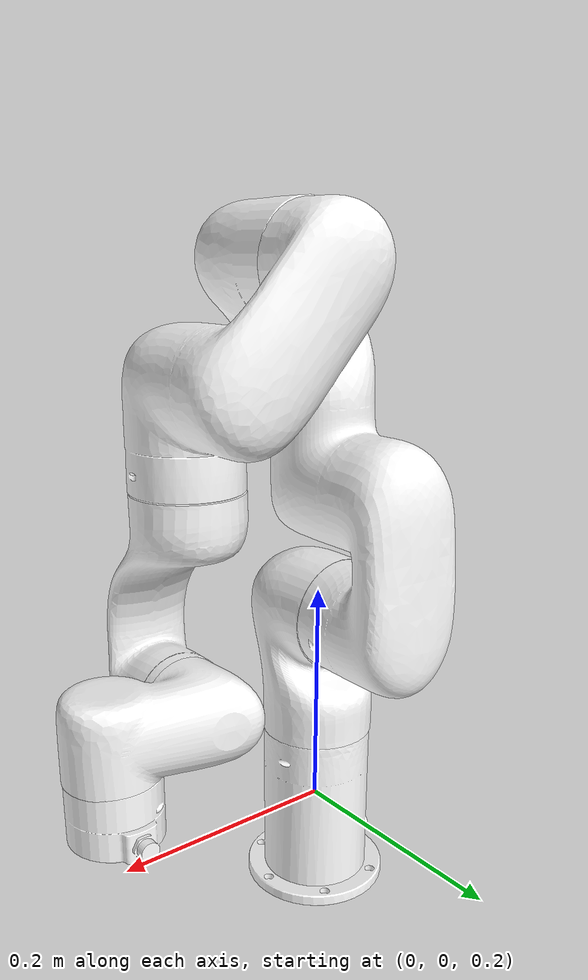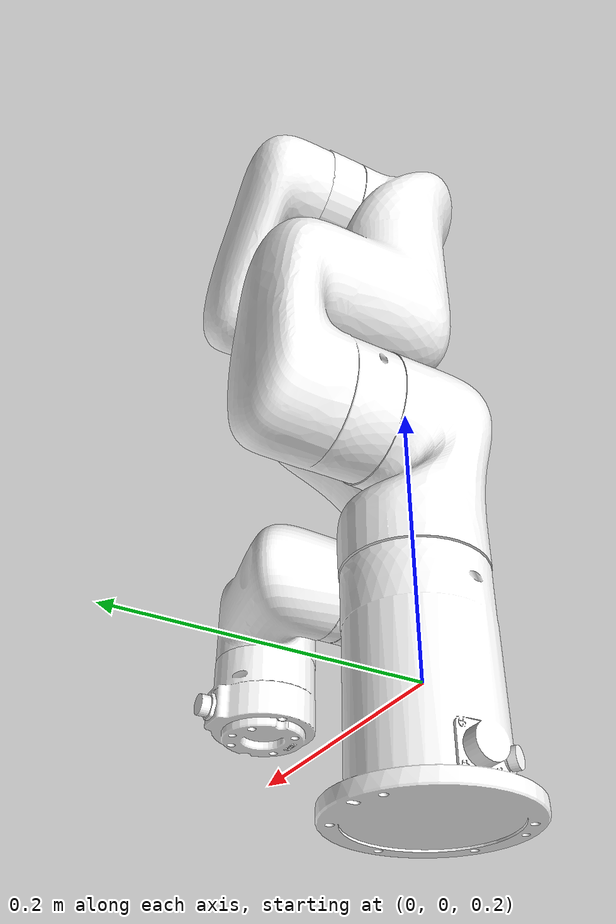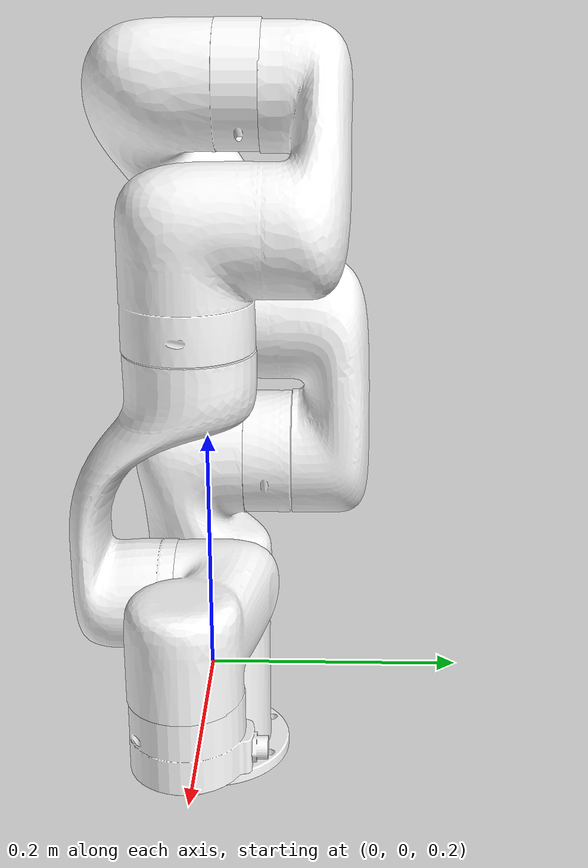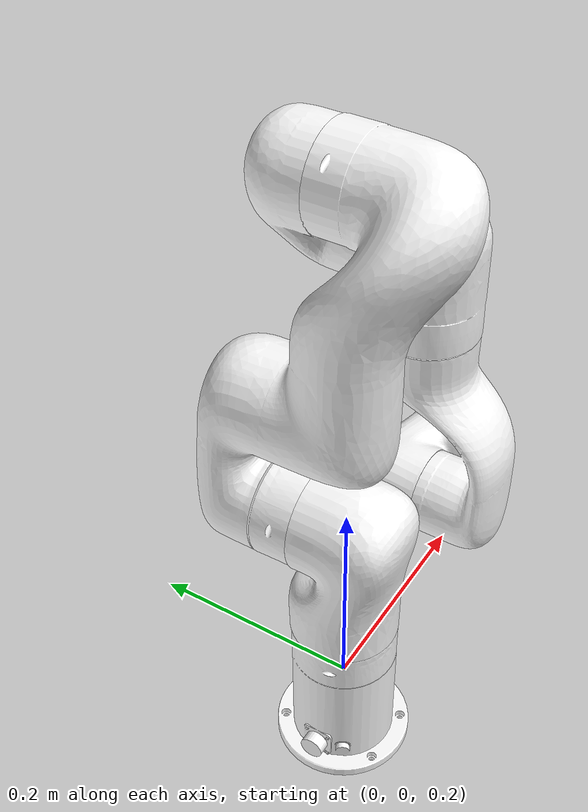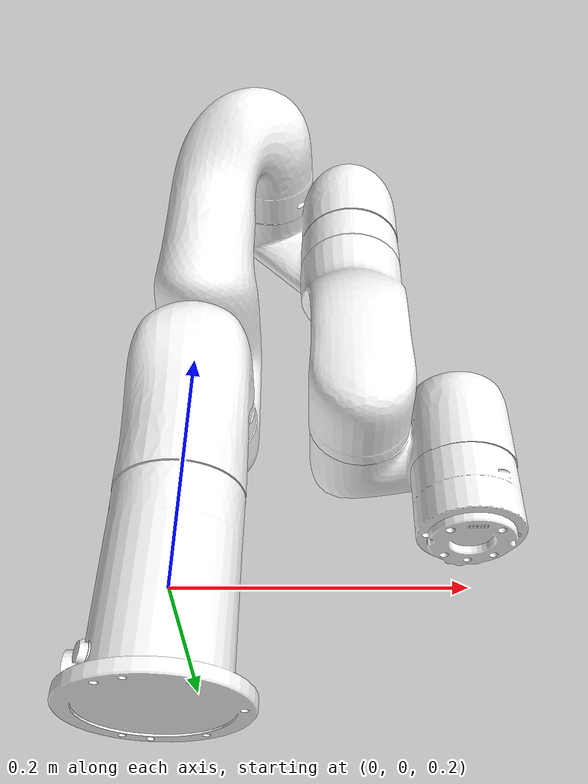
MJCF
<mujoco model="xarm5">
  <compiler angle="radian" autolimits="true" meshdir="assets"/>

  <option integrator="implicitfast"/>

  <asset>
    <material name="white" rgba="1 1 1 1"/>
    <material name="gray" rgba="0.753 0.753 0.753 1"/>
    <material name="black" rgba="0.149 0.149 0.149 1"/>

    <mesh name="link_base" file="link_base.stl" scale="0.001 0.001 0.001"/>
    <mesh name="link1" file="link1.stl" scale="0.001 0.001 0.001"/>
    <mesh name="link2" file="link2.stl" scale="0.001 0.001 0.001"/>
    <mesh name="link3" file="link3.stl" scale="0.001 0.001 0.001"/>
    <mesh name="link4" file="link4.stl" scale="0.001 0.001 0.001"/>
    <mesh name="link5" file="link5.stl" scale="0.001 0.001 0.001"/>
    <mesh name="link6" file="link6.stl" scale="0.001 0.001 0.001"/>

    <mesh name="end_tool" file="end_tool.stl"/>
    <mesh name="base_link" file="base_link.stl"/>
    <mesh name="left_outer_knuckle" file="left_outer_knuckle.stl"/>
    <mesh name="left_finger" file="left_finger.stl"/>
    <mesh name="left_inner_knuckle" file="left_inner_knuckle.stl"/>
    <mesh name="right_outer_knuckle" file="right_outer_knuckle.stl"/>
    <mesh name="right_finger" file="right_finger.stl"/>
    <mesh name="right_inner_knuckle" file="right_inner_knuckle.stl"/>
  </asset>

  <default>
    <default class="xarm5">
      <geom type="mesh" material="white"/>
      <joint axis="0 0 1" armature="0.1" range="-6.28319 6.28319" frictionloss="1"/>
      <general biastype="affine" ctrlrange="-6.28319 6.28319"/>
      <default class="size1">
        <joint damping="10"/>
        <general gainprm="1500" biasprm="0 -1500 -150" forcerange="-50 50"/>
      </default>
      <default class="size2">
        <joint damping="5"/>
        <general gainprm="1000" biasprm="0 -1000 -100" forcerange="-30 30"/>
      </default>
      <default class="size3">
        <joint damping="0.1" frictionloss="0.01" armature="0.005"/>
        <general gainprm="3000" biasprm="0 -3000 -20" forcerange="-100 100"/>
      </default>
      <default class="spring_link">
        <joint range="0 0.85" stiffness="0.05" springref="2.62" damping="0.00125"/>
      </default>
      <default class="driver">
        <joint range="0 0.85" armature="0.005" damping="0.1" solreflimit="0.005 1"/>
      </default>
      <default class="follower">
        <joint range="0 0.85" solreflimit="0.005 1"/>
      </default>
      <default class="visual">
        <geom type="mesh" contype="0" conaffinity="0" group="2"/>
      </default>
      <default class="collision">
        <geom type="mesh" group="3"/>
        <default class="pad_box1">
          <geom type="box" friction="0.7" solimp="0.95 0.99 0.001" solref="0.004 1" mass="0" priority="1" size="0.015 0.002 0.0095" rgba="0.0 0.1 0.7 1"/>
        </default>
        <default class="pad_box2">
          <geom type="box" friction="0.6" solimp="0.95 0.99 0.001" solref="0.004 1" mass="0" priority="1" size="0.015 0.002 0.0095" rgba="0.0 0.5 0.5 1"/>
        </default>
      </default>
    </default>
  </default>

  <worldbody>
    <body name="link_base" pos="0 0 .12" childclass="xarm5">
        <inertial pos="-0.021131 -0.0016302 0.056488" quat="0.696843 0.20176 0.10388 0.680376" mass="0.88556"
          diaginertia="0.00382023 0.00335282 0.00167725"/>
        <geom mesh="link_base" />

        <body name="link1" pos="0 -0.0035 0.151">
          <inertial pos="-0.0002 0.02905 -0.01233" quat="0.978953 -0.202769 -0.00441617 -0.0227264" mass="2.382"
          diaginertia="0.00569127 0.00533384 0.00293865"/>
          <joint name="joint1"
          class="size1"
          pos = "0 0.001 0"
          />
          <geom mesh="link1"/>

          <body name="link2" pos="-0.006 0.045 0.0685">
            <joint name="joint2"
            pos="0.0065 0 0.049"
            class="size1"
            axis="0 1 0"
            />
            <geom mesh="link2"/>

            <body name="link3" pos="0.089 -0.005 0.17">
            <inertial pos="0.0466 -0.02463 -0.00768" quat="0.913819 0.289775 0.281481 -0.0416455" mass="1.6383"
              diaginertia="0.00351721 0.00294089 0.00195868"/>
            <joint name="joint3"
            class="size2"
            axis="0 1 0"
            pos= "-0.03 -0.01 0.163"
            />
            <geom mesh="link3"/>

              <body name="link4" pos="0.049 -0.055 -0.219">
              <inertial pos="0.07047 -0.11575 0.012" quat="0.422108 0.852026 -0.126025 0.282832" mass="1.7269"
                diaginertia="0.00657137 0.00647948 0.00186763"/>
              <geom mesh="link4"/>

                <body name="link5" pos="0.03 0.028 0">
                <inertial pos="-0.00032 0.01604 -0.026" quat="0.999311 -0.0304457 0.000577067 0.0212082" mass="1.3203"
                  diaginertia="0.00534729 0.00499076 0.0013489"/>
                <joint name="joint4"
                class="size3"
                axis="0 1 0"
                pos="-0.03 -0.015 0.037"
                />
                <geom mesh="link5"/>

                  <body name="link6" pos="0.046 0 -0.056">
                  <inertial pos="0.06469 0.03278 0.02141" quat="-0.217672 0.772419 0.16258 0.574069" mass="1.325"
                    diaginertia="0.00245421 0.00221646 0.00107273"/>
                  <joint name="joint5"
                  class="size3"
                  axis="0 0 -1"
                  pos="0.0003 -0.007 0"
                  limited="false"
                  />
                  <geom mesh="link6"/>
                  </body>
                </body>
              </body>
            </body>
          </body>
        </body>
    </body>
  </worldbody>

<actuator>
    <general name="act1" joint="joint1" class="size1" ctrlrange="-100 100"/>
    <general name="act2" joint="joint2" class="size1" ctrlrange="-2.0595 2.0944"/>
    <general name="act3" joint="joint3" class="size2" ctrlrange="-3.9270 0.19198"/>
    <general name="act4" joint="joint4" class="size3" ctrlrange="-1.6930 3.1416"/>
    <general name="act5" joint="joint5" class="size3" ctrlrange="-100 100"/>
</actuator>

  <keyframe>
    <key name="home" qpos="1.571 3.141 1.571 3.141 6.283"/>
  </keyframe>

</mujoco>
